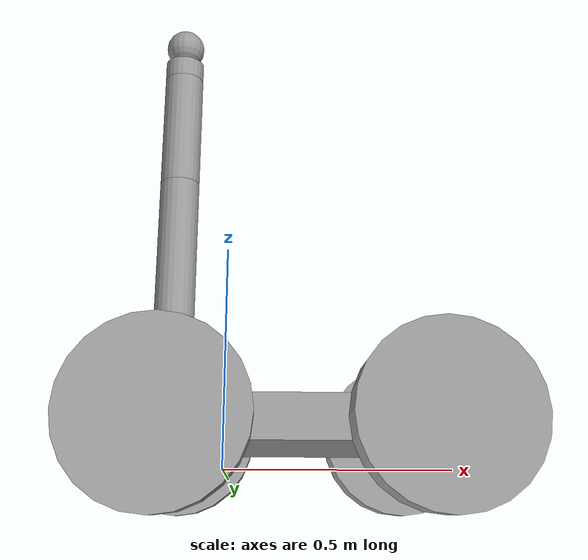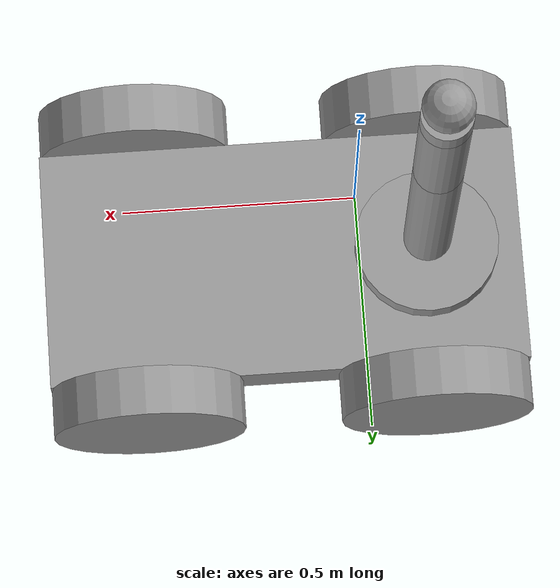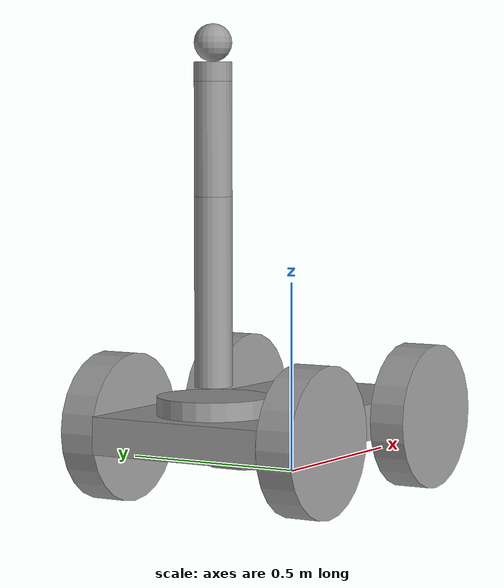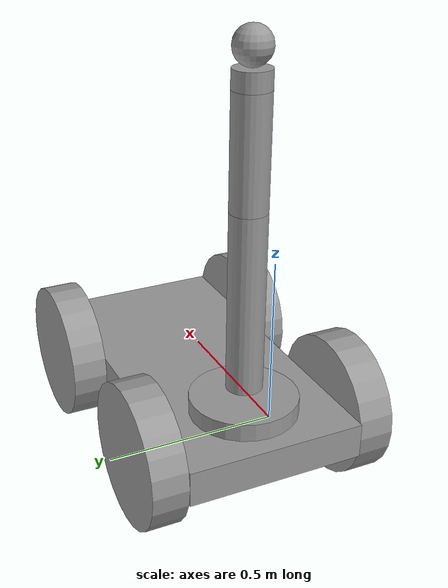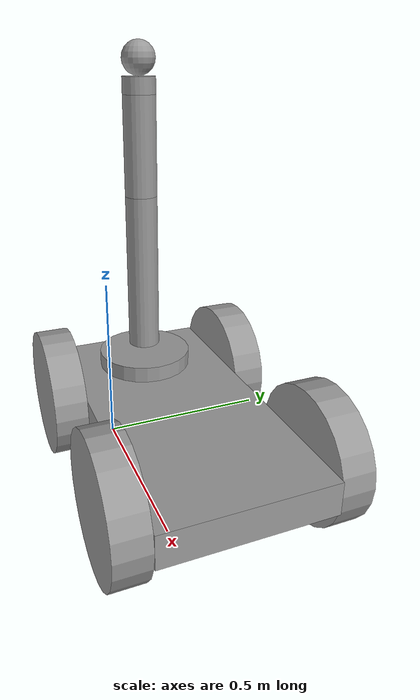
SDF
<?xml version='1.0'?>
<sdf version='1.6'>
  <model name='grabber-bot'>
    <link name='link_0'>
      <inertial>
        <mass>1</mass>
        <inertia>
          <ixx>0.166667</ixx>
          <ixy>0</ixy>
          <ixz>0</ixz>
          <iyy>0.166667</iyy>
          <iyz>0</iyz>
          <izz>0.166667</izz>
        </inertia>
        <pose frame=''>0 0 0 0 -0 0</pose>
      </inertial>
      <pose frame=''>0.164929 0.158726 0.105222 0 -0 0</pose>
      <gravity>1</gravity>
      <self_collide>0</self_collide>
      <kinematic>0</kinematic>
      <enable_wind>0</enable_wind>
      <visual name='visual'>
        <pose frame=''>0 0 0 0 -0 0</pose>
        <geometry>
          <box>
            <size>1 0.5 0.1</size>
          </box>
        </geometry>
        <material>
          <lighting>1</lighting>
          <script>
            <uri>file://media/materials/scripts/gazebo.material</uri>
            <name>Gazebo/Grey</name>
          </script>
          <shader type='pixel'>
            <normal_map>__default__</normal_map>
          </shader>
          <ambient>0.3 0.3 0.3 1</ambient>
          <diffuse>0.7 0.7 0.7 1</diffuse>
          <specular>0.01 0.01 0.01 1</specular>
          <emissive>0 0 0 1</emissive>
        </material>
        <transparency>0</transparency>
        <cast_shadows>1</cast_shadows>
      </visual>
      <collision name='collision'>
        <laser_retro>0</laser_retro>
        <max_contacts>10</max_contacts>
        <pose frame=''>0 0 0 0 -0 0</pose>
        <geometry>
          <box>
            <size>1 0.5 0.1</size>
          </box>
        </geometry>
        <surface>
          <friction>
            <ode>
              <mu>1</mu>
              <mu2>1</mu2>
              <fdir1>0 0 0</fdir1>
              <slip1>0</slip1>
              <slip2>0</slip2>
            </ode>
            <torsional>
              <coefficient>1</coefficient>
              <patch_radius>0</patch_radius>
              <surface_radius>0</surface_radius>
              <use_patch_radius>1</use_patch_radius>
              <ode>
                <slip>0</slip>
              </ode>
            </torsional>
          </friction>
          <bounce>
            <restitution_coefficient>0</restitution_coefficient>
            <threshold>1e+06</threshold>
          </bounce>
          <contact>
            <collide_without_contact>0</collide_without_contact>
            <collide_without_contact_bitmask>1</collide_without_contact_bitmask>
            <collide_bitmask>1</collide_bitmask>
            <ode>
              <soft_cfm>0</soft_cfm>
              <soft_erp>0.2</soft_erp>
              <kp>1e+13</kp>
              <kd>1</kd>
              <max_vel>0.01</max_vel>
              <min_depth>0</min_depth>
            </ode>
            <bullet>
              <split_impulse>1</split_impulse>
              <split_impulse_penetration_threshold>-0.01</split_impulse_penetration_threshold>
              <soft_cfm>0</soft_cfm>
              <soft_erp>0.2</soft_erp>
              <kp>1e+13</kp>
              <kd>1</kd>
            </bullet>
          </contact>
        </surface>
      </collision>
    </link>
    <link name='fl_wheel'>
      <inertial>
        <mass>1</mass>
        <inertia>
          <ixx>0.145833</ixx>
          <ixy>0</ixy>
          <ixz>0</ixz>
          <iyy>0.145833</iyy>
          <iyz>0</iyz>
          <izz>0.125</izz>
        </inertia>
        <pose frame=''>0 0 0 0 -0 0</pose>
      </inertial>
      <pose frame=''>-0.135071 -0.141293 0.105222 1.5707 -0 0</pose>
      <gravity>1</gravity>
      <self_collide>0</self_collide>
      <kinematic>0</kinematic>
      <enable_wind>0</enable_wind>
      <visual name='visual'>
        <pose frame=''>0 0 0 0 -0 0</pose>
        <geometry>
          <cylinder>
            <radius>0.2</radius>
            <length>0.1</length>
          </cylinder>
        </geometry>
        <material>
          <lighting>1</lighting>
          <script>
            <uri>file://media/materials/scripts/gazebo.material</uri>
            <name>Gazebo/Grey</name>
          </script>
          <shader type='pixel'>
            <normal_map>__default__</normal_map>
          </shader>
          <ambient>0.3 0.3 0.3 1</ambient>
          <diffuse>0.7 0.7 0.7 1</diffuse>
          <specular>0.01 0.01 0.01 1</specular>
          <emissive>0 0 0 1</emissive>
        </material>
        <transparency>0</transparency>
        <cast_shadows>1</cast_shadows>
      </visual>
      <collision name='collision'>
        <laser_retro>0</laser_retro>
        <max_contacts>10</max_contacts>
        <pose frame=''>0 0 0 0 -0 0</pose>
        <geometry>
          <cylinder>
            <radius>0.2</radius>
            <length>0.1</length>
          </cylinder>
        </geometry>
        <surface>
          <friction>
            <ode>
              <mu>1</mu>
              <mu2>1</mu2>
              <fdir1>0 0 0</fdir1>
              <slip1>0</slip1>
              <slip2>0</slip2>
            </ode>
            <torsional>
              <coefficient>1</coefficient>
              <patch_radius>0</patch_radius>
              <surface_radius>0</surface_radius>
              <use_patch_radius>1</use_patch_radius>
              <ode>
                <slip>0</slip>
              </ode>
            </torsional>
          </friction>
          <bounce>
            <restitution_coefficient>0</restitution_coefficient>
            <threshold>1e+06</threshold>
          </bounce>
          <contact>
            <collide_without_contact>0</collide_without_contact>
            <collide_without_contact_bitmask>1</collide_without_contact_bitmask>
            <collide_bitmask>1</collide_bitmask>
            <ode>
              <soft_cfm>0</soft_cfm>
              <soft_erp>0.2</soft_erp>
              <kp>1e+13</kp>
              <kd>1</kd>
              <max_vel>0.01</max_vel>
              <min_depth>0</min_depth>
            </ode>
            <bullet>
              <split_impulse>1</split_impulse>
              <split_impulse_penetration_threshold>-0.01</split_impulse_penetration_threshold>
              <soft_cfm>0</soft_cfm>
              <soft_erp>0.2</soft_erp>
              <kp>1e+13</kp>
              <kd>1</kd>
            </bullet>
          </contact>
        </surface>
      </collision>
    </link>
    <link name='br_wheel'>
      <inertial>
        <mass>1</mass>
        <inertia>
          <ixx>0.145833</ixx>
          <ixy>0</ixy>
          <ixz>0</ixz>
          <iyy>0.145833</iyy>
          <iyz>0</iyz>
          <izz>0.125</izz>
        </inertia>
        <pose frame=''>0 0 0 0 -0 0</pose>
      </inertial>
      <pose frame=''>0.464929 0.458745 0.105222 1.5707 -0 0</pose>
      <gravity>1</gravity>
      <self_collide>0</self_collide>
      <kinematic>0</kinematic>
      <enable_wind>0</enable_wind>
      <visual name='visual'>
        <pose frame=''>0 0 0 0 -0 0</pose>
        <geometry>
          <cylinder>
            <radius>0.2</radius>
            <length>0.1</length>
          </cylinder>
        </geometry>
        <material>
          <lighting>1</lighting>
          <script>
            <uri>file://media/materials/scripts/gazebo.material</uri>
            <name>Gazebo/Grey</name>
          </script>
          <shader type='pixel'>
            <normal_map>__default__</normal_map>
          </shader>
          <ambient>0.3 0.3 0.3 1</ambient>
          <diffuse>0.7 0.7 0.7 1</diffuse>
          <specular>0.01 0.01 0.01 1</specular>
          <emissive>0 0 0 1</emissive>
        </material>
        <transparency>0</transparency>
        <cast_shadows>1</cast_shadows>
      </visual>
      <collision name='collision'>
        <laser_retro>0</laser_retro>
        <max_contacts>10</max_contacts>
        <pose frame=''>0 0 0 0 -0 0</pose>
        <geometry>
          <cylinder>
            <radius>0.2</radius>
            <length>0.1</length>
          </cylinder>
        </geometry>
        <surface>
          <friction>
            <ode>
              <mu>1</mu>
              <mu2>1</mu2>
              <fdir1>0 0 0</fdir1>
              <slip1>0</slip1>
              <slip2>0</slip2>
            </ode>
            <torsional>
              <coefficient>1</coefficient>
              <patch_radius>0</patch_radius>
              <surface_radius>0</surface_radius>
              <use_patch_radius>1</use_patch_radius>
              <ode>
                <slip>0</slip>
              </ode>
            </torsional>
          </friction>
          <bounce>
            <restitution_coefficient>0</restitution_coefficient>
            <threshold>1e+06</threshold>
          </bounce>
          <contact>
            <collide_without_contact>0</collide_without_contact>
            <collide_without_contact_bitmask>1</collide_without_contact_bitmask>
            <collide_bitmask>1</collide_bitmask>
            <ode>
              <soft_cfm>0</soft_cfm>
              <soft_erp>0.2</soft_erp>
              <kp>1e+13</kp>
              <kd>1</kd>
              <max_vel>0.01</max_vel>
              <min_depth>0</min_depth>
            </ode>
            <bullet>
              <split_impulse>1</split_impulse>
              <split_impulse_penetration_threshold>-0.01</split_impulse_penetration_threshold>
              <soft_cfm>0</soft_cfm>
              <soft_erp>0.2</soft_erp>
              <kp>1e+13</kp>
              <kd>1</kd>
            </bullet>
          </contact>
        </surface>
      </collision>
    </link>
    <link name='fr_wheel'>
      <inertial>
        <mass>1</mass>
        <inertia>
          <ixx>0.145833</ixx>
          <ixy>0</ixy>
          <ixz>0</ixz>
          <iyy>0.145833</iyy>
          <iyz>0</iyz>
          <izz>0.125</izz>
        </inertia>
        <pose frame=''>0 0 0 0 -0 0</pose>
      </inertial>
      <pose frame=''>-0.135071 0.458745 0.105222 1.5707 -0 0</pose>
      <gravity>1</gravity>
      <self_collide>0</self_collide>
      <kinematic>0</kinematic>
      <enable_wind>0</enable_wind>
      <visual name='visual'>
        <pose frame=''>0 0 0 0 -0 0</pose>
        <geometry>
          <cylinder>
            <radius>0.2</radius>
            <length>0.1</length>
          </cylinder>
        </geometry>
        <material>
          <lighting>1</lighting>
          <script>
            <uri>file://media/materials/scripts/gazebo.material</uri>
            <name>Gazebo/Grey</name>
          </script>
          <shader type='pixel'>
            <normal_map>__default__</normal_map>
          </shader>
          <ambient>0.3 0.3 0.3 1</ambient>
          <diffuse>0.7 0.7 0.7 1</diffuse>
          <specular>0.01 0.01 0.01 1</specular>
          <emissive>0 0 0 1</emissive>
        </material>
        <transparency>0</transparency>
        <cast_shadows>1</cast_shadows>
      </visual>
      <collision name='collision'>
        <laser_retro>0</laser_retro>
        <max_contacts>10</max_contacts>
        <pose frame=''>0 0 0 0 -0 0</pose>
        <geometry>
          <cylinder>
            <radius>0.2</radius>
            <length>0.1</length>
          </cylinder>
        </geometry>
        <surface>
          <friction>
            <ode>
              <mu>1</mu>
              <mu2>1</mu2>
              <fdir1>0 0 0</fdir1>
              <slip1>0</slip1>
              <slip2>0</slip2>
            </ode>
            <torsional>
              <coefficient>1</coefficient>
              <patch_radius>0</patch_radius>
              <surface_radius>0</surface_radius>
              <use_patch_radius>1</use_patch_radius>
              <ode>
                <slip>0</slip>
              </ode>
            </torsional>
          </friction>
          <bounce>
            <restitution_coefficient>0</restitution_coefficient>
            <threshold>1e+06</threshold>
          </bounce>
          <contact>
            <collide_without_contact>0</collide_without_contact>
            <collide_without_contact_bitmask>1</collide_without_contact_bitmask>
            <collide_bitmask>1</collide_bitmask>
            <ode>
              <soft_cfm>0</soft_cfm>
              <soft_erp>0.2</soft_erp>
              <kp>1e+13</kp>
              <kd>1</kd>
              <max_vel>0.01</max_vel>
              <min_depth>0</min_depth>
            </ode>
            <bullet>
              <split_impulse>1</split_impulse>
              <split_impulse_penetration_threshold>-0.01</split_impulse_penetration_threshold>
              <soft_cfm>0</soft_cfm>
              <soft_erp>0.2</soft_erp>
              <kp>1e+13</kp>
              <kd>1</kd>
            </bullet>
          </contact>
        </surface>
      </collision>
    </link>
    <link name='bl_wheel'>
      <inertial>
        <mass>1</mass>
        <inertia>
          <ixx>0.145833</ixx>
          <ixy>0</ixy>
          <ixz>0</ixz>
          <iyy>0.145833</iyy>
          <iyz>0</iyz>
          <izz>0.125</izz>
        </inertia>
        <pose frame=''>0 0 0 0 -0 0</pose>
      </inertial>
      <pose frame=''>0.464929 -0.141293 0.105222 1.5707 -0 0</pose>
      <gravity>1</gravity>
      <self_collide>0</self_collide>
      <kinematic>0</kinematic>
      <enable_wind>0</enable_wind>
      <visual name='visual'>
        <pose frame=''>0 0 0 0 -0 0</pose>
        <geometry>
          <cylinder>
            <radius>0.2</radius>
            <length>0.1</length>
          </cylinder>
        </geometry>
        <material>
          <lighting>1</lighting>
          <script>
            <uri>file://media/materials/scripts/gazebo.material</uri>
            <name>Gazebo/Grey</name>
          </script>
          <shader type='pixel'>
            <normal_map>__default__</normal_map>
          </shader>
          <ambient>0.3 0.3 0.3 1</ambient>
          <diffuse>0.7 0.7 0.7 1</diffuse>
          <specular>0.01 0.01 0.01 1</specular>
          <emissive>0 0 0 1</emissive>
        </material>
        <transparency>0</transparency>
        <cast_shadows>1</cast_shadows>
      </visual>
      <collision name='collision'>
        <laser_retro>0</laser_retro>
        <max_contacts>10</max_contacts>
        <pose frame=''>0 0 0 0 -0 0</pose>
        <geometry>
          <cylinder>
            <radius>0.2</radius>
            <length>0.1</length>
          </cylinder>
        </geometry>
        <surface>
          <friction>
            <ode>
              <mu>1</mu>
              <mu2>1</mu2>
              <fdir1>0 0 0</fdir1>
              <slip1>0</slip1>
              <slip2>0</slip2>
            </ode>
            <torsional>
              <coefficient>1</coefficient>
              <patch_radius>0</patch_radius>
              <surface_radius>0</surface_radius>
              <use_patch_radius>1</use_patch_radius>
              <ode>
                <slip>0</slip>
              </ode>
            </torsional>
          </friction>
          <bounce>
            <restitution_coefficient>0</restitution_coefficient>
            <threshold>1e+06</threshold>
          </bounce>
          <contact>
            <collide_without_contact>0</collide_without_contact>
            <collide_without_contact_bitmask>1</collide_without_contact_bitmask>
            <collide_bitmask>1</collide_bitmask>
            <ode>
              <soft_cfm>0</soft_cfm>
              <soft_erp>0.2</soft_erp>
              <kp>1e+13</kp>
              <kd>1</kd>
              <max_vel>0.01</max_vel>
              <min_depth>0</min_depth>
            </ode>
            <bullet>
              <split_impulse>1</split_impulse>
              <split_impulse_penetration_threshold>-0.01</split_impulse_penetration_threshold>
              <soft_cfm>0</soft_cfm>
              <soft_erp>0.2</soft_erp>
              <kp>1e+13</kp>
              <kd>1</kd>
            </bullet>
          </contact>
        </surface>
      </collision>
    </link>
    <link name='arm_link_0'>
      <inertial>
        <mass>1</mass>
        <inertia>
          <ixx>0.145833</ixx>
          <ixy>0</ixy>
          <ixz>0</ixz>
          <iyy>0.145833</iyy>
          <iyz>0</iyz>
          <izz>0.125</izz>
        </inertia>
        <pose frame=''>0 0 0 0 -0 0</pose>
      </inertial>
      <pose frame=''>-0.135071 0.158726 0.180222 0 -0 0</pose>
      <gravity>1</gravity>
      <self_collide>0</self_collide>
      <kinematic>0</kinematic>
      <enable_wind>0</enable_wind>
      <visual name='visual'>
        <pose frame=''>0 0 0 0 -0 0</pose>
        <geometry>
          <cylinder>
            <radius>0.15</radius>
            <length>0.05</length>
          </cylinder>
        </geometry>
        <material>
          <lighting>1</lighting>
          <script>
            <uri>file://media/materials/scripts/gazebo.material</uri>
            <name>Gazebo/Grey</name>
          </script>
          <shader type='pixel'>
            <normal_map>__default__</normal_map>
          </shader>
          <ambient>0.3 0.3 0.3 1</ambient>
          <diffuse>0.7 0.7 0.7 1</diffuse>
          <specular>0.01 0.01 0.01 1</specular>
          <emissive>0 0 0 1</emissive>
        </material>
        <transparency>0</transparency>
        <cast_shadows>1</cast_shadows>
      </visual>
      <collision name='collision'>
        <laser_retro>0</laser_retro>
        <max_contacts>10</max_contacts>
        <pose frame=''>0 0 0 0 -0 0</pose>
        <geometry>
          <cylinder>
            <radius>0.15</radius>
            <length>0.05</length>
          </cylinder>
        </geometry>
        <surface>
          <friction>
            <ode>
              <mu>1</mu>
              <mu2>1</mu2>
              <fdir1>0 0 0</fdir1>
              <slip1>0</slip1>
              <slip2>0</slip2>
            </ode>
            <torsional>
              <coefficient>1</coefficient>
              <patch_radius>0</patch_radius>
              <surface_radius>0</surface_radius>
              <use_patch_radius>1</use_patch_radius>
              <ode>
                <slip>0</slip>
              </ode>
            </torsional>
          </friction>
          <bounce>
            <restitution_coefficient>0</restitution_coefficient>
            <threshold>1e+06</threshold>
          </bounce>
          <contact>
            <collide_without_contact>0</collide_without_contact>
            <collide_without_contact_bitmask>1</collide_without_contact_bitmask>
            <collide_bitmask>1</collide_bitmask>
            <ode>
              <soft_cfm>0</soft_cfm>
              <soft_erp>0.2</soft_erp>
              <kp>1e+13</kp>
              <kd>1</kd>
              <max_vel>0.01</max_vel>
              <min_depth>0</min_depth>
            </ode>
            <bullet>
              <split_impulse>1</split_impulse>
              <split_impulse_penetration_threshold>-0.01</split_impulse_penetration_threshold>
              <soft_cfm>0</soft_cfm>
              <soft_erp>0.2</soft_erp>
              <kp>1e+13</kp>
              <kd>1</kd>
            </bullet>
          </contact>
        </surface>
      </collision>
    </link>
    <link name='arm_link_1'>
      <inertial>
        <mass>1</mass>
        <inertia>
          <ixx>0.145833</ixx>
          <ixy>0</ixy>
          <ixz>0</ixz>
          <iyy>0.145833</iyy>
          <iyz>0</iyz>
          <izz>0.125</izz>
        </inertia>
        <pose frame=''>0 0 0 0 -0 0</pose>
      </inertial>
      <pose frame=''>-0.135071 0.158726 0.230222 0 -0 0</pose>
      <gravity>1</gravity>
      <self_collide>0</self_collide>
      <kinematic>0</kinematic>
      <enable_wind>0</enable_wind>
      <visual name='visual'>
        <pose frame=''>0 0 0.25 0 -0 0</pose>
        <geometry>
          <cylinder>
            <radius>0.05</radius>
            <length>0.5</length>
          </cylinder>
        </geometry>
        <material>
          <lighting>1</lighting>
          <script>
            <uri>file://media/materials/scripts/gazebo.material</uri>
            <name>Gazebo/Grey</name>
          </script>
          <shader type='pixel'>
            <normal_map>__default__</normal_map>
          </shader>
          <ambient>0.3 0.3 0.3 1</ambient>
          <diffuse>0.7 0.7 0.7 1</diffuse>
          <specular>0.01 0.01 0.01 1</specular>
          <emissive>0 0 0 1</emissive>
        </material>
        <transparency>0</transparency>
        <cast_shadows>1</cast_shadows>
      </visual>
      <collision name='collision'>
        <laser_retro>0</laser_retro>
        <max_contacts>10</max_contacts>
        <pose frame=''>0 0 0.25 0 -0 0</pose>
        <geometry>
          <cylinder>
            <radius>0.05</radius>
            <length>0.5</length>
          </cylinder>
        </geometry>
        <surface>
          <friction>
            <ode>
              <mu>1</mu>
              <mu2>1</mu2>
              <fdir1>0 0 0</fdir1>
              <slip1>0</slip1>
              <slip2>0</slip2>
            </ode>
            <torsional>
              <coefficient>1</coefficient>
              <patch_radius>0</patch_radius>
              <surface_radius>0</surface_radius>
              <use_patch_radius>1</use_patch_radius>
              <ode>
                <slip>0</slip>
              </ode>
            </torsional>
          </friction>
          <bounce>
            <restitution_coefficient>0</restitution_coefficient>
            <threshold>1e+06</threshold>
          </bounce>
          <contact>
            <collide_without_contact>0</collide_without_contact>
            <collide_without_contact_bitmask>1</collide_without_contact_bitmask>
            <collide_bitmask>1</collide_bitmask>
            <ode>
              <soft_cfm>0</soft_cfm>
              <soft_erp>0.2</soft_erp>
              <kp>1e+13</kp>
              <kd>1</kd>
              <max_vel>0.01</max_vel>
              <min_depth>0</min_depth>
            </ode>
            <bullet>
              <split_impulse>1</split_impulse>
              <split_impulse_penetration_threshold>-0.01</split_impulse_penetration_threshold>
              <soft_cfm>0</soft_cfm>
              <soft_erp>0.2</soft_erp>
              <kp>1e+13</kp>
              <kd>1</kd>
            </bullet>
          </contact>
        </surface>
      </collision>
    </link>
    <link name='arm_link_2'>
      <inertial>
        <mass>1</mass>
        <inertia>
          <ixx>0.145833</ixx>
          <ixy>0</ixy>
          <ixz>0</ixz>
          <iyy>0.145833</iyy>
          <iyz>0</iyz>
          <izz>0.125</izz>
        </inertia>
        <pose frame=''>0 0 0 0 -0 0</pose>
      </inertial>
      <pose frame=''>-0.135071 0.158726 0.730222 0 -0 0</pose>
      <gravity>1</gravity>
      <self_collide>0</self_collide>
      <kinematic>0</kinematic>
      <enable_wind>0</enable_wind>
      <visual name='visual'>
        <pose frame=''>0 0 0.15 0 -0 0</pose>
        <geometry>
          <cylinder>
            <radius>0.05</radius>
            <length>0.3</length>
          </cylinder>
        </geometry>
        <material>
          <lighting>1</lighting>
          <script>
            <uri>file://media/materials/scripts/gazebo.material</uri>
            <name>Gazebo/Grey</name>
          </script>
          <shader type='pixel'>
            <normal_map>__default__</normal_map>
          </shader>
          <ambient>0.3 0.3 0.3 1</ambient>
          <diffuse>0.7 0.7 0.7 1</diffuse>
          <specular>0.01 0.01 0.01 1</specular>
          <emissive>0 0 0 1</emissive>
        </material>
        <transparency>0</transparency>
        <cast_shadows>1</cast_shadows>
      </visual>
      <collision name='collision'>
        <laser_retro>0</laser_retro>
        <max_contacts>10</max_contacts>
        <pose frame=''>0 0 0.15 0 -0 0</pose>
        <geometry>
          <cylinder>
            <radius>0.05</radius>
            <length>0.3</length>
          </cylinder>
        </geometry>
        <surface>
          <friction>
            <ode>
              <mu>1</mu>
              <mu2>1</mu2>
              <fdir1>0 0 0</fdir1>
              <slip1>0</slip1>
              <slip2>0</slip2>
            </ode>
            <torsional>
              <coefficient>1</coefficient>
              <patch_radius>0</patch_radius>
              <surface_radius>0</surface_radius>
              <use_patch_radius>1</use_patch_radius>
              <ode>
                <slip>0</slip>
              </ode>
            </torsional>
          </friction>
          <bounce>
            <restitution_coefficient>0</restitution_coefficient>
            <threshold>1e+06</threshold>
          </bounce>
          <contact>
            <collide_without_contact>0</collide_without_contact>
            <collide_without_contact_bitmask>1</collide_without_contact_bitmask>
            <collide_bitmask>1</collide_bitmask>
            <ode>
              <soft_cfm>0</soft_cfm>
              <soft_erp>0.2</soft_erp>
              <kp>1e+13</kp>
              <kd>1</kd>
              <max_vel>0.01</max_vel>
              <min_depth>0</min_depth>
            </ode>
            <bullet>
              <split_impulse>1</split_impulse>
              <split_impulse_penetration_threshold>-0.01</split_impulse_penetration_threshold>
              <soft_cfm>0</soft_cfm>
              <soft_erp>0.2</soft_erp>
              <kp>1e+13</kp>
              <kd>1</kd>
            </bullet>
          </contact>
        </surface>
      </collision>
    </link>
    <link name='arm_link_3'>
      <inertial>
        <mass>1</mass>
        <inertia>
          <ixx>0.145833</ixx>
          <ixy>0</ixy>
          <ixz>0</ixz>
          <iyy>0.145833</iyy>
          <iyz>0</iyz>
          <izz>0.125</izz>
        </inertia>
        <pose frame=''>0 0 0 0 -0 0</pose>
      </inertial>
      <pose frame=''>-0.135071 0.158726 1.03022 0 -0 0</pose>
      <gravity>1</gravity>
      <self_collide>0</self_collide>
      <kinematic>0</kinematic>
      <enable_wind>0</enable_wind>
      <visual name='visual'>
        <pose frame=''>0 0 0.025 0 -0 0</pose>
        <geometry>
          <cylinder>
            <radius>0.05</radius>
            <length>0.05</length>
          </cylinder>
        </geometry>
        <material>
          <lighting>1</lighting>
          <script>
            <uri>file://media/materials/scripts/gazebo.material</uri>
            <name>Gazebo/Grey</name>
          </script>
          <shader type='pixel'>
            <normal_map>__default__</normal_map>
          </shader>
          <ambient>0.3 0.3 0.3 1</ambient>
          <diffuse>0.7 0.7 0.7 1</diffuse>
          <specular>0.01 0.01 0.01 1</specular>
          <emissive>0 0 0 1</emissive>
        </material>
        <transparency>0</transparency>
        <cast_shadows>1</cast_shadows>
      </visual>
      <collision name='collision'>
        <laser_retro>0</laser_retro>
        <max_contacts>10</max_contacts>
        <pose frame=''>0 0 0.025 0 -0 0</pose>
        <geometry>
          <cylinder>
            <radius>0.05</radius>
            <length>0.05</length>
          </cylinder>
        </geometry>
        <surface>
          <friction>
            <ode>
              <mu>1</mu>
              <mu2>1</mu2>
              <fdir1>0 0 0</fdir1>
              <slip1>0</slip1>
              <slip2>0</slip2>
            </ode>
            <torsional>
              <coefficient>1</coefficient>
              <patch_radius>0</patch_radius>
              <surface_radius>0</surface_radius>
              <use_patch_radius>1</use_patch_radius>
              <ode>
                <slip>0</slip>
              </ode>
            </torsional>
          </friction>
          <bounce>
            <restitution_coefficient>0</restitution_coefficient>
            <threshold>1e+06</threshold>
          </bounce>
          <contact>
            <collide_without_contact>0</collide_without_contact>
            <collide_without_contact_bitmask>1</collide_without_contact_bitmask>
            <collide_bitmask>1</collide_bitmask>
            <ode>
              <soft_cfm>0</soft_cfm>
              <soft_erp>0.2</soft_erp>
              <kp>1e+13</kp>
              <kd>1</kd>
              <max_vel>0.01</max_vel>
              <min_depth>0</min_depth>
            </ode>
            <bullet>
              <split_impulse>1</split_impulse>
              <split_impulse_penetration_threshold>-0.01</split_impulse_penetration_threshold>
              <soft_cfm>0</soft_cfm>
              <soft_erp>0.2</soft_erp>
              <kp>1e+13</kp>
              <kd>1</kd>
            </bullet>
          </contact>
        </surface>
      </collision>
    </link>
    <link name='arm_link_4'>
      <inertial>
        <mass>1</mass>
        <inertia>
          <ixx>0.1</ixx>
          <ixy>0</ixy>
          <ixz>0</ixz>
          <iyy>0.1</iyy>
          <iyz>0</iyz>
          <izz>0.1</izz>
        </inertia>
        <pose frame=''>0 0 0 0 -0 0</pose>
      </inertial>
      <pose frame=''>-0.135071 0.158726 1.13022 0 -0 0</pose>
      <gravity>1</gravity>
      <self_collide>0</self_collide>
      <kinematic>0</kinematic>
      <enable_wind>0</enable_wind>
      <visual name='visual'>
        <pose frame=''>0 0 0 0 -0 0</pose>
        <geometry>
          <sphere>
            <radius>0.05</radius>
          </sphere>
        </geometry>
        <material>
          <lighting>1</lighting>
          <script>
            <uri>file://media/materials/scripts/gazebo.material</uri>
            <name>Gazebo/Grey</name>
          </script>
          <shader type='pixel'>
            <normal_map>__default__</normal_map>
          </shader>
          <ambient>0.3 0.3 0.3 1</ambient>
          <diffuse>0.7 0.7 0.7 1</diffuse>
          <specular>0.01 0.01 0.01 1</specular>
          <emissive>0 0 0 1</emissive>
        </material>
        <transparency>0</transparency>
        <cast_shadows>1</cast_shadows>
      </visual>
      <collision name='collision'>
        <laser_retro>0</laser_retro>
        <max_contacts>10</max_contacts>
        <pose frame=''>0 0 0 0 -0 0</pose>
        <geometry>
          <sphere>
            <radius>0.05</radius>
          </sphere>
        </geometry>
        <surface>
          <friction>
            <ode>
              <mu>1</mu>
              <mu2>1</mu2>
              <fdir1>0 0 0</fdir1>
              <slip1>0</slip1>
              <slip2>0</slip2>
            </ode>
            <torsional>
              <coefficient>1</coefficient>
              <patch_radius>0</patch_radius>
              <surface_radius>0</surface_radius>
              <use_patch_radius>1</use_patch_radius>
              <ode>
                <slip>0</slip>
              </ode>
            </torsional>
          </friction>
          <bounce>
            <restitution_coefficient>0</restitution_coefficient>
            <threshold>1e+06</threshold>
          </bounce>
          <contact>
            <collide_without_contact>0</collide_without_contact>
            <collide_without_contact_bitmask>1</collide_without_contact_bitmask>
            <collide_bitmask>1</collide_bitmask>
            <ode>
              <soft_cfm>0</soft_cfm>
              <soft_erp>0.2</soft_erp>
              <kp>1e+13</kp>
              <kd>1</kd>
              <max_vel>0.01</max_vel>
              <min_depth>0</min_depth>
            </ode>
            <bullet>
              <split_impulse>1</split_impulse>
              <split_impulse_penetration_threshold>-0.01</split_impulse_penetration_threshold>
              <soft_cfm>0</soft_cfm>
              <soft_erp>0.2</soft_erp>
              <kp>1e+13</kp>
              <kd>1</kd>
            </bullet>
          </contact>
        </surface>
      </collision>
    </link>
    <joint name='link_0_JOINT_0' type='revolute'>
      <parent>link_0</parent>
      <child>fl_wheel</child>
      <pose frame=''>0 0 0 0 -0 0</pose>
      <axis>
        <xyz>0 0 1</xyz>
        <use_parent_model_frame>0</use_parent_model_frame>
        <limit>
          <lower>-1.79769e+308</lower>
          <upper>1.79769e+308</upper>
          <effort>-1</effort>
          <velocity>-1</velocity>
        </limit>
        <dynamics>
          <spring_reference>0</spring_reference>
          <spring_stiffness>0</spring_stiffness>
          <damping>0</damping>
          <friction>5</friction>
        </dynamics>
      </axis>
      <physics>
        <ode>
          <limit>
            <cfm>0</cfm>
            <erp>0.2</erp>
          </limit>
          <suspension>
            <cfm>0</cfm>
            <erp>0.2</erp>
          </suspension>
        </ode>
      </physics>
    </joint>
    <joint name='link_0_JOINT_1' type='revolute'>
      <parent>link_0</parent>
      <child>bl_wheel</child>
      <pose frame=''>0 0 0 0 -0 0</pose>
      <axis>
        <xyz>0 0 1</xyz>
        <use_parent_model_frame>0</use_parent_model_frame>
        <limit>
          <lower>-1.79769e+308</lower>
          <upper>1.79769e+308</upper>
          <effort>-1</effort>
          <velocity>-1</velocity>
        </limit>
        <dynamics>
          <spring_reference>0</spring_reference>
          <spring_stiffness>0</spring_stiffness>
          <damping>0</damping>
          <friction>5</friction>
        </dynamics>
      </axis>
      <physics>
        <ode>
          <limit>
            <cfm>0</cfm>
            <erp>0.2</erp>
          </limit>
          <suspension>
            <cfm>0</cfm>
            <erp>0.2</erp>
          </suspension>
        </ode>
      </physics>
    </joint>
    <joint name='link_0_JOINT_2' type='revolute'>
      <parent>link_0</parent>
      <child>fr_wheel</child>
      <pose frame=''>0 0 0 0 -0 0</pose>
      <axis>
        <xyz>0 0 1</xyz>
        <use_parent_model_frame>0</use_parent_model_frame>
        <limit>
          <lower>-1.79769e+308</lower>
          <upper>1.79769e+308</upper>
          <effort>-1</effort>
          <velocity>-1</velocity>
        </limit>
        <dynamics>
          <spring_reference>0</spring_reference>
          <spring_stiffness>0</spring_stiffness>
          <damping>0</damping>
          <friction>5</friction>
        </dynamics>
      </axis>
      <physics>
        <ode>
          <limit>
            <cfm>0</cfm>
            <erp>0.2</erp>
          </limit>
          <suspension>
            <cfm>0</cfm>
            <erp>0.2</erp>
          </suspension>
        </ode>
      </physics>
    </joint>
    <joint name='link_0_JOINT_3' type='revolute'>
      <parent>link_0</parent>
      <child>br_wheel</child>
      <pose frame=''>0 0 0 0 -0 0</pose>
      <axis>
        <xyz>0 0 1</xyz>
        <use_parent_model_frame>0</use_parent_model_frame>
        <limit>
          <lower>-1.79769e+308</lower>
          <upper>1.79769e+308</upper>
          <effort>-1</effort>
          <velocity>-1</velocity>
        </limit>
        <dynamics>
          <spring_reference>0</spring_reference>
          <spring_stiffness>0</spring_stiffness>
          <damping>0</damping>
          <friction>5</friction>
        </dynamics>
      </axis>
      <physics>
        <ode>
          <limit>
            <cfm>0</cfm>
            <erp>0.2</erp>
          </limit>
          <suspension>
            <cfm>0</cfm>
            <erp>0.2</erp>
          </suspension>
        </ode>
      </physics>
    </joint>
    <joint name='link_0_JOINT_4' type='revolute'>
      <parent>link_0</parent>
      <child>arm_link_0</child>
      <pose frame=''>0 0 0 0 -0 0</pose>
      <axis>
        <xyz>0 0 1</xyz>
        <use_parent_model_frame>0</use_parent_model_frame>
        <limit>
          <lower>-1.79769e+308</lower>
          <upper>1.79769e+308</upper>
          <effort>-1</effort>
          <velocity>-1</velocity>
        </limit>
        <dynamics>
          <spring_reference>0</spring_reference>
          <damping>0</damping>
          <friction>5</friction>
        </dynamics>
      </axis>
      <physics>
        <ode>
          <limit>
            <cfm>0</cfm>
            <erp>0.2</erp>
          </limit>
          <suspension>
            <cfm>0</cfm>
            <erp>0.2</erp>
          </suspension>
        </ode>
      </physics>
    </joint>
    <joint name='link_2_JOINT_5' type='revolute'>
      <parent>arm_link_0</parent>
      <child>arm_link_1</child>
      <pose frame=''>0 0 0 0 -0 0</pose>
      <axis>
        <xyz>0 1 0</xyz>
        <use_parent_model_frame>0</use_parent_model_frame>
        <limit>
          <lower>-1.79769e+308</lower>
          <upper>1.79769e+308</upper>
          <effort>-1</effort>
          <velocity>-1</velocity>
        </limit>
        <dynamics>
          <spring_reference>0</spring_reference>
          <spring_stiffness>0</spring_stiffness>
          <damping>0</damping>
          <friction>5</friction>
        </dynamics>
      </axis>
      <physics>
        <ode>
          <limit>
            <cfm>0</cfm>
            <erp>0.2</erp>
          </limit>
          <suspension>
            <cfm>0</cfm>
            <erp>0.2</erp>
          </suspension>
        </ode>
      </physics>
    </joint>
    <joint name='link_3_JOINT_6' type='revolute'>
      <parent>arm_link_1</parent>
      <child>arm_link_2</child>
      <pose frame=''>0 0 0 0 -0 0</pose>
      <axis>
        <xyz>0 1 0</xyz>
        <use_parent_model_frame>0</use_parent_model_frame>
        <limit>
          <lower>-1.79769e+308</lower>
          <upper>1.79769e+308</upper>
          <effort>-1</effort>
          <velocity>-1</velocity>
        </limit>
        <dynamics>
          <spring_reference>0</spring_reference>
          <spring_stiffness>0</spring_stiffness>
          <damping>0</damping>
          <friction>5</friction>
        </dynamics>
      </axis>
      <physics>
        <ode>
          <limit>
            <cfm>0</cfm>
            <erp>0.2</erp>
          </limit>
          <suspension>
            <cfm>0</cfm>
            <erp>0.2</erp>
          </suspension>
        </ode>
      </physics>
    </joint>
    <joint name='link_3_clone_JOINT_7' type='revolute'>
      <parent>arm_link_2</parent>
      <child>arm_link_3</child>
      <pose frame=''>0 0 0 0 -0 0</pose>
      <axis>
        <xyz>0 0 1</xyz>
        <use_parent_model_frame>0</use_parent_model_frame>
        <limit>
          <lower>-1.79769e+308</lower>
          <upper>1.79769e+308</upper>
          <effort>-1</effort>
          <velocity>-1</velocity>
        </limit>
        <dynamics>
          <spring_reference>0</spring_reference>
          <spring_stiffness>0</spring_stiffness>
          <damping>0</damping>
          <friction>5</friction>
        </dynamics>
      </axis>
      <physics>
        <ode>
          <limit>
            <cfm>0</cfm>
            <erp>0.2</erp>
          </limit>
          <suspension>
            <cfm>0</cfm>
            <erp>0.2</erp>
          </suspension>
        </ode>
      </physics>
    </joint>
    <joint name='link_4_JOINT_8' type='revolute'>
      <parent>arm_link_3</parent>
      <child>arm_link_4</child>
      <pose frame=''>0 0 0 0 -0 0</pose>
      <axis>
        <xyz>0 1 0</xyz>
        <use_parent_model_frame>0</use_parent_model_frame>
        <limit>
          <lower>-1.79769e+308</lower>
          <upper>1.79769e+308</upper>
          <effort>-1</effort>
          <velocity>-1</velocity>
        </limit>
        <dynamics>
          <spring_reference>0</spring_reference>
          <spring_stiffness>0</spring_stiffness>
          <friction>5</friction>
        </dynamics>
      </axis>
      <physics>
        <ode>
          <limit>
            <cfm>0</cfm>
            <erp>0.2</erp>
          </limit>
          <suspension>
            <cfm>0</cfm>
            <erp>0.2</erp>
          </suspension>
        </ode>
      </physics>
    </joint>
    <static>0</static>
    <allow_auto_disable>1</allow_auto_disable>
  </model>
</sdf>
